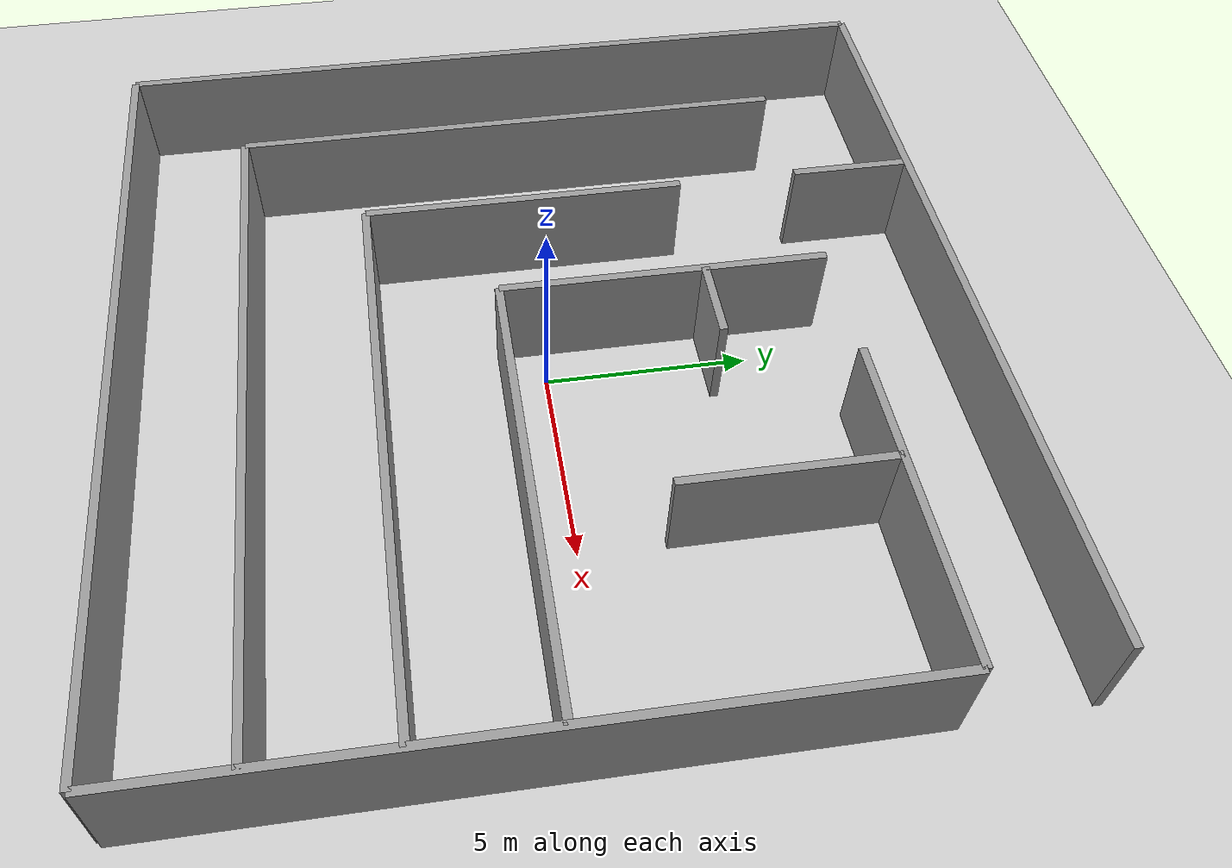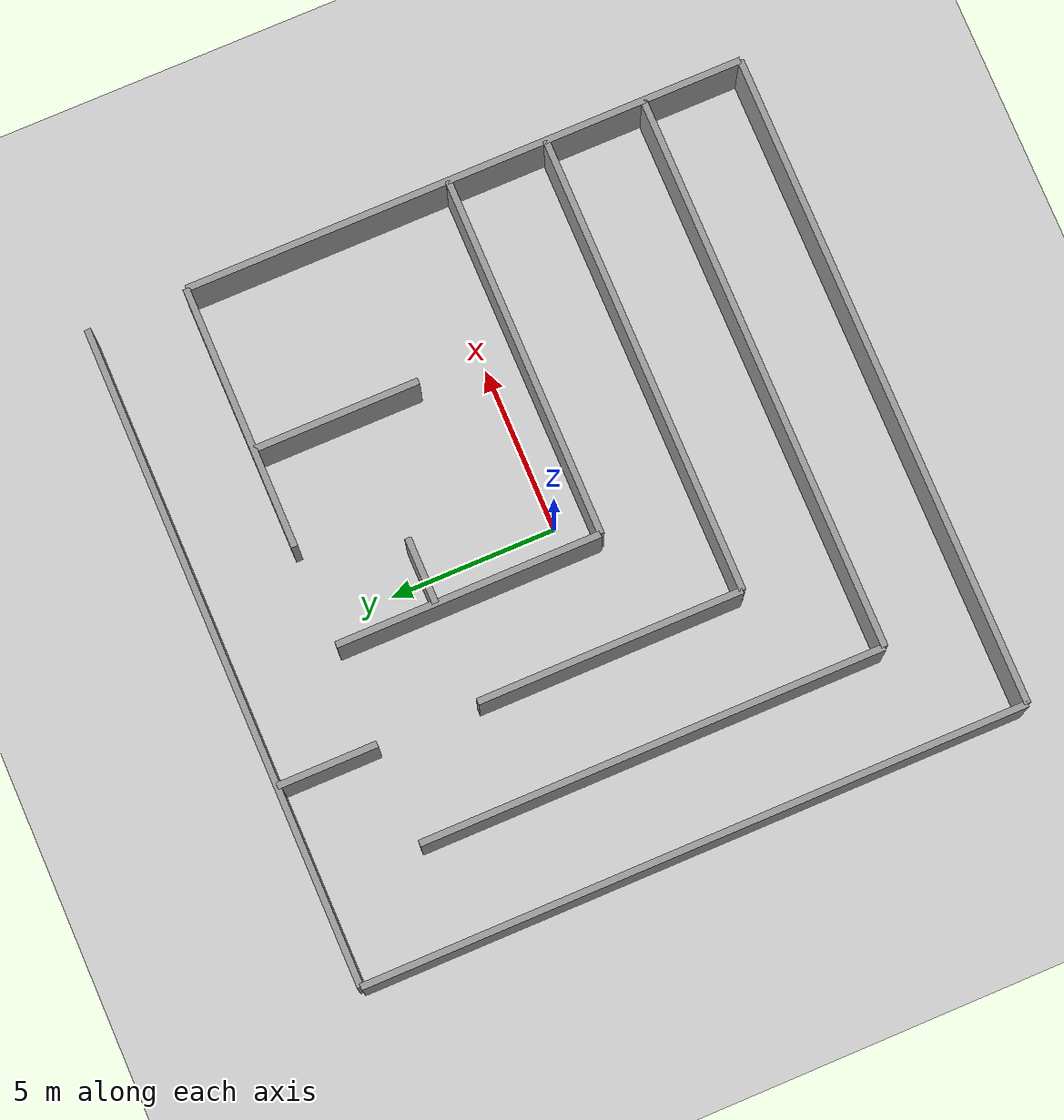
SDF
<?xml version="1.0" ?>
<sdf version="1.4">
  <world name="default">
    <!-- A global light source -->
    <include>
      <uri>model://sun</uri>
    </include>
    <!-- A ground plane -->
    <include>
      <uri>model://ground_plane</uri>
    </include>
    <include>
      <uri>model://crazy_maze</uri>
    </include>
  </world>
</sdf>

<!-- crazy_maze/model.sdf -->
<sdf version='1.4'>
  <model name='crazy_maze'>
    <static>1</static>
    <link name='Wall_0'>
      <pose>-10 -10 0 0 0 1.570796327</pose>
      <collision name='Wall_0_Collision'>
        <pose>10 0 1.25 0 0 0</pose>
        <geometry>
          <box>
            <size>20 0.2 2.5</size>
          </box>
        </geometry>
      </collision>
      <visual name='Wall_0_Visual'>
        <pose>10 0 1.25 0 0 0</pose>
        <geometry>
          <box>
            <size>20 0.2 2.5</size>
          </box>
        </geometry>
        <material>
          <script>
            <uri>file://media/materials/scripts/gazebo.material</uri>
            <name>Gazebo/Grey</name>
          </script>
        </material>
      </visual>
    </link>

    <link name='Wall_1'>
      <pose>-10 -10 0 0 0 0</pose>
      <collision name='Wall_1_Collision'>
        <pose>10 0 1.25 0 0 0</pose>
        <geometry>
          <box>
            <size>20 0.2 2.5</size>
          </box>
        </geometry>
      </collision>
      <visual name='Wall_1_Visual'>
        <pose>10 0 1.25 0 0 0</pose>
        <geometry>
          <box>
            <size>20 0.2 2.5</size>
          </box>
        </geometry>
        <material>
          <script>
            <uri>file://media/materials/scripts/gazebo.material</uri>
            <name>Gazebo/Grey</name>
          </script>
        </material>
      </visual>
    </link>

    <link name='Wall_2'>
      <pose>10 -10 0 0 0 1.570796327</pose>
      <collision name='Wall_2_Collision'>
        <pose>8.5 0 1.25 0 0 0</pose>
        <geometry>
          <box>
            <size>17 0.2 2.5</size>
          </box>
        </geometry>
      </collision>
      <visual name='Wall_2_Visual'>
        <pose>8.5 0 1.25 0 0 0</pose>
        <geometry>
          <box>
            <size>17 0.2 2.5</size>
          </box>
        </geometry>
        <material>
          <script>
            <uri>file://media/materials/scripts/gazebo.material</uri>
            <name>Gazebo/Grey</name>
          </script>
        </material>
      </visual>
    </link>

    <link name='Wall_3'>
      <pose>-10 10 0 0 0 0</pose>
      <collision name='Wall_3_Collision'>
        <pose>10 0 1.25 0 0 0</pose>
        <geometry>
          <box>
            <size>20 0.2 2.5</size>
          </box>
        </geometry>
      </collision>
      <visual name='Wall_3_Visual'>
        <pose>10 0 1.25 0 0 0</pose>
        <geometry>
          <box>
            <size>20 0.2 2.5</size>
          </box>
        </geometry>
        <material>
          <script>
            <uri>file://media/materials/scripts/gazebo.material</uri>
            <name>Gazebo/Grey</name>
          </script>
        </material>
      </visual>
    </link>

    <link name='Wall_4'>
      <pose>-7 -7 0 0 0 0</pose>
      <collision name='Wall_4_Collision'>
        <pose>8.5 0 1.25 0 0 0</pose>
        <geometry>
          <box>
            <size>17 0.2 2.5</size>
          </box>
        </geometry>
      </collision>
      <visual name='Wall_4_Visual'>
        <pose>8.5 0 1.25 0 0 0</pose>
        <geometry>
          <box>
            <size>17 0.2 2.5</size>
          </box>
        </geometry>
        <material>
          <script>
            <uri>file://media/materials/scripts/gazebo.material</uri>
            <name>Gazebo/Grey</name>
          </script>
        </material>
      </visual>
    </link>

    <link name='Wall_5'>
      <pose>-7 -7 0 0 0 1.570796327</pose>
      <collision name='Wall_5_Collision'>
        <pose>7 0 1.25 0 0 0</pose>
        <geometry>
          <box>
            <size>14 0.2 2.5</size>
          </box>
        </geometry>
      </collision>
      <visual name='Wall_5_Visual'>
        <pose>7 0 1.25 0 0 0</pose>
        <geometry>
          <box>
            <size>14 0.2 2.5</size>
          </box>
        </geometry>
        <material>
          <script>
            <uri>file://media/materials/scripts/gazebo.material</uri>
            <name>Gazebo/Grey</name>
          </script>
        </material>
      </visual>
    </link>

    <link name='Wall_6'>
      <pose>-4 -4 0 0 0 0</pose>
      <collision name='Wall_6_Collision'>
        <pose>7 0 1.25 0 0 0</pose>
        <geometry>
          <box>
            <size>14 0.2 2.5</size>
          </box>
        </geometry>
      </collision>
      <visual name='Wall_6_Visual'>
        <pose>7 0 1.25 0 0 0</pose>
        <geometry>
          <box>
            <size>14 0.2 2.5</size>
          </box>
        </geometry>
        <material>
          <script>
            <uri>file://media/materials/scripts/gazebo.material</uri>
            <name>Gazebo/Grey</name>
          </script>
        </material>
      </visual>
    </link>

    <link name='Wall_7'>
      <pose>-4 -4 0 0 0 1.570796327</pose>
      <collision name='Wall_7_Collision'>
        <pose>4 0 1.25 0 0 0</pose>
        <geometry>
          <box>
            <size>8 0.2 2.5</size>
          </box>
        </geometry>
      </collision>
      <visual name='Wall_7_Visual'>
        <pose>4 0 1.25 0 0 0</pose>
        <geometry>
          <box>
            <size>8 0.2 2.5</size>
          </box>
        </geometry>
        <material>
          <script>
            <uri>file://media/materials/scripts/gazebo.material</uri>
            <name>Gazebo/Grey</name>
          </script>
        </material>
      </visual>
    </link>

    <link name='Wall_8'>
      <pose>-1 -1 0 0 0 0</pose>
      <collision name='Wall_8_Collision'>
        <pose>5.5 0 1.25 0 0 0</pose>
        <geometry>
          <box>
            <size>11 0.2 2.5</size>
          </box>
        </geometry>
      </collision>
      <visual name='Wall_8_Visual'>
        <pose>5.5 0 1.25 0 0 0</pose>
        <geometry>
          <box>
            <size>11 0.2 2.5</size>
          </box>
        </geometry>
        <material>
          <script>
            <uri>file://media/materials/scripts/gazebo.material</uri>
            <name>Gazebo/Grey</name>
          </script>
        </material>
      </visual>
    </link>

    <link name='Wall_9'>
      <pose>-1 -1 0 0 0 1.570796327</pose>
      <collision name='Wall_9_Collision'>
        <pose>4 0 1.25 0 0 0</pose>
        <geometry>
          <box>
            <size>8 0.2 2.5</size>
          </box>
        </geometry>
      </collision>
      <visual name='Wall_9_Visual'>
        <pose>4 0 1.25 0 0 0</pose>
        <geometry>
          <box>
            <size>8 0.2 2.5</size>
          </box>
        </geometry>
        <material>
          <script>
            <uri>file://media/materials/scripts/gazebo.material</uri>
            <name>Gazebo/Grey</name>
          </script>
        </material>
      </visual>
    </link>

    <link name='Wall_10'>
      <pose>-4 7 0 0 0 1.570796327</pose>
      <collision name='Wall_10_Collision'>
        <pose>1.5 0 1.25 0 0 0</pose>
        <geometry>
          <box>
            <size>3 0.2 2.5</size>
          </box>
        </geometry>
      </collision>
      <visual name='Wall_10_Visual'>
        <pose>1.5 0 1.25 0 0 0</pose>
        <geometry>
          <box>
            <size>3 0.2 2.5</size>
          </box>
        </geometry>
        <material>
          <script>
            <uri>file://media/materials/scripts/gazebo.material</uri>
            <name>Gazebo/Grey</name>
          </script>
        </material>
      </visual>
    </link>

    <link name='Wall_11'>
      <pose>-1 4 0 0 0 0</pose>
      <collision name='Wall_11_Collision'>
        <pose>1 0 1.25 0 0 0</pose>
        <geometry>
          <box>
            <size>2 0.2 2.5</size>
          </box>
        </geometry>
      </collision>
      <visual name='Wall_11_Visual'>
        <pose>1 0 1.25 0 0 0</pose>
        <geometry>
          <box>
            <size>2 0.2 2.5</size>
          </box>
        </geometry>
        <material>
          <script>
            <uri>file://media/materials/scripts/gazebo.material</uri>
            <name>Gazebo/Grey</name>
          </script>
        </material>
      </visual>
    </link>

    <link name='Wall_12'>
      <pose>2 7 0 0 0 0</pose>
      <collision name='Wall_12_Collision'>
        <pose>4 0 1.25 0 0 0</pose>
        <geometry>
          <box>
            <size>8 0.2 2.5</size>
          </box>
        </geometry>
      </collision>
      <visual name='Wall_12_Visual'>
        <pose>4 0 1.25 0 0 0</pose>
        <geometry>
          <box>
            <size>8 0.2 2.5</size>
          </box>
        </geometry>
        <material>
          <script>
            <uri>file://media/materials/scripts/gazebo.material</uri>
            <name>Gazebo/Grey</name>
          </script>
        </material>
      </visual>
    </link>

    <link name='Wall_13'>
      <pose>5 2 0 0 0 1.570796327</pose>
      <collision name='Wall_13_Collision'>
        <pose>2.5 0 1.25 0 0 0</pose>
        <geometry>
          <box>
            <size>5 0.2 2.5</size>
          </box>
        </geometry>
      </collision>
      <visual name='Wall_13_Visual'>
        <pose>2.5 0 1.25 0 0 0</pose>
        <geometry>
          <box>
            <size>5 0.2 2.5</size>
          </box>
        </geometry>
        <material>
          <script>
            <uri>file://media/materials/scripts/gazebo.material</uri>
            <name>Gazebo/Grey</name>
          </script>
        </material>
      </visual>
    </link>

  </model>
</sdf>
